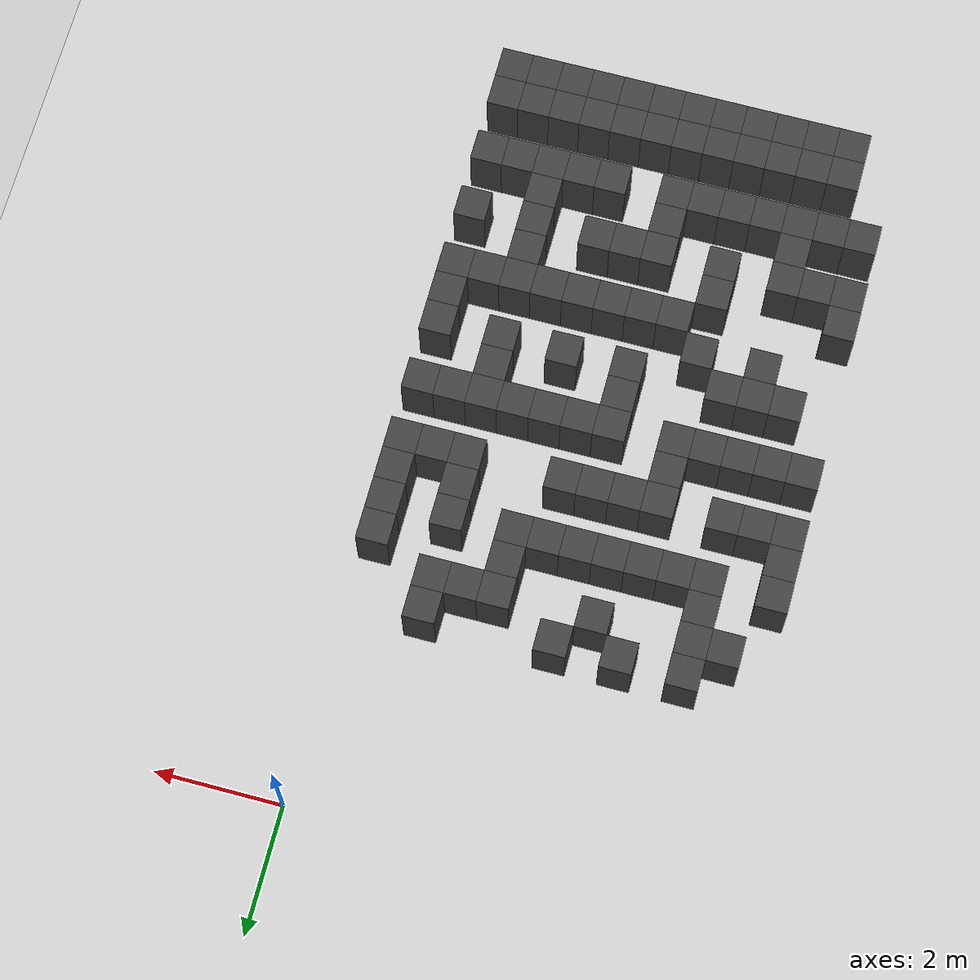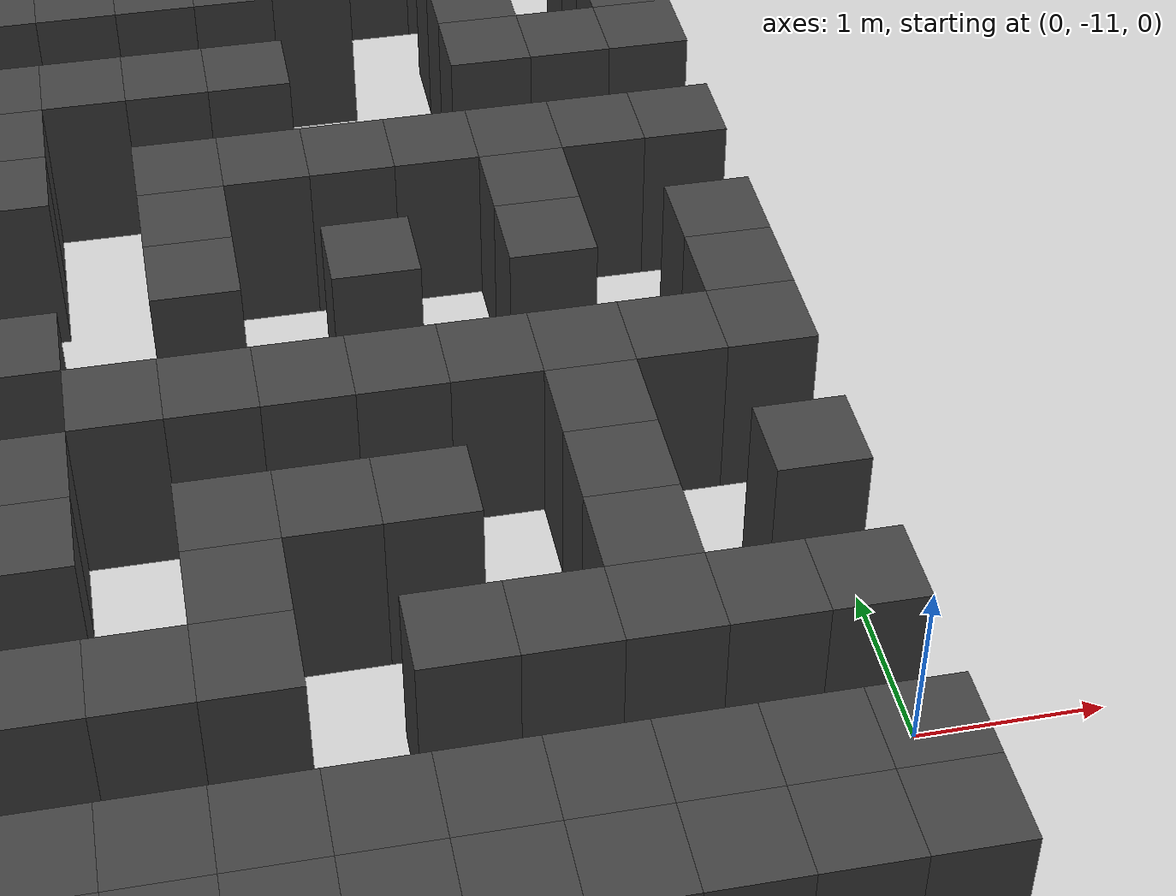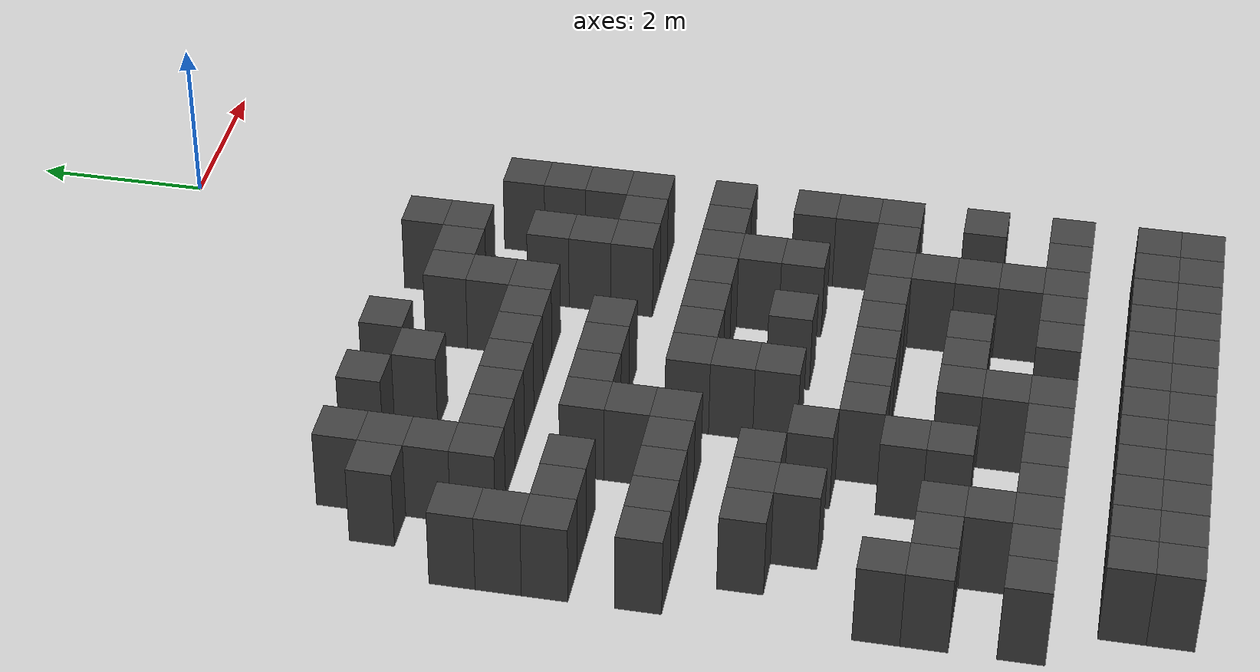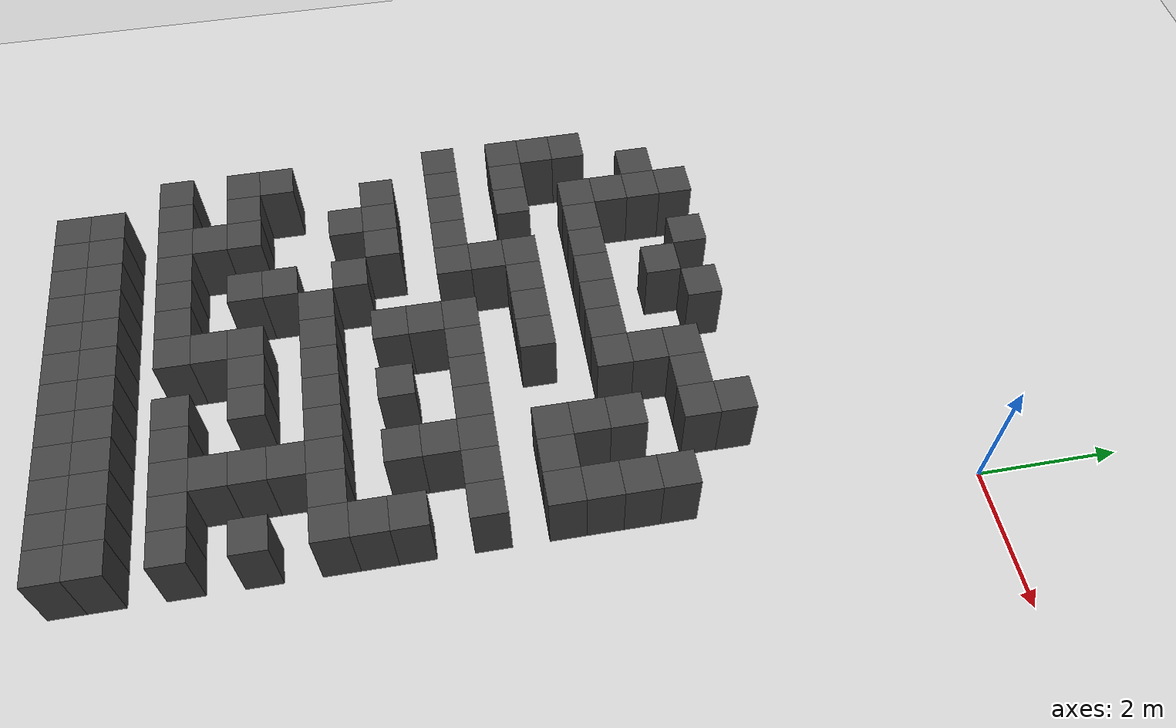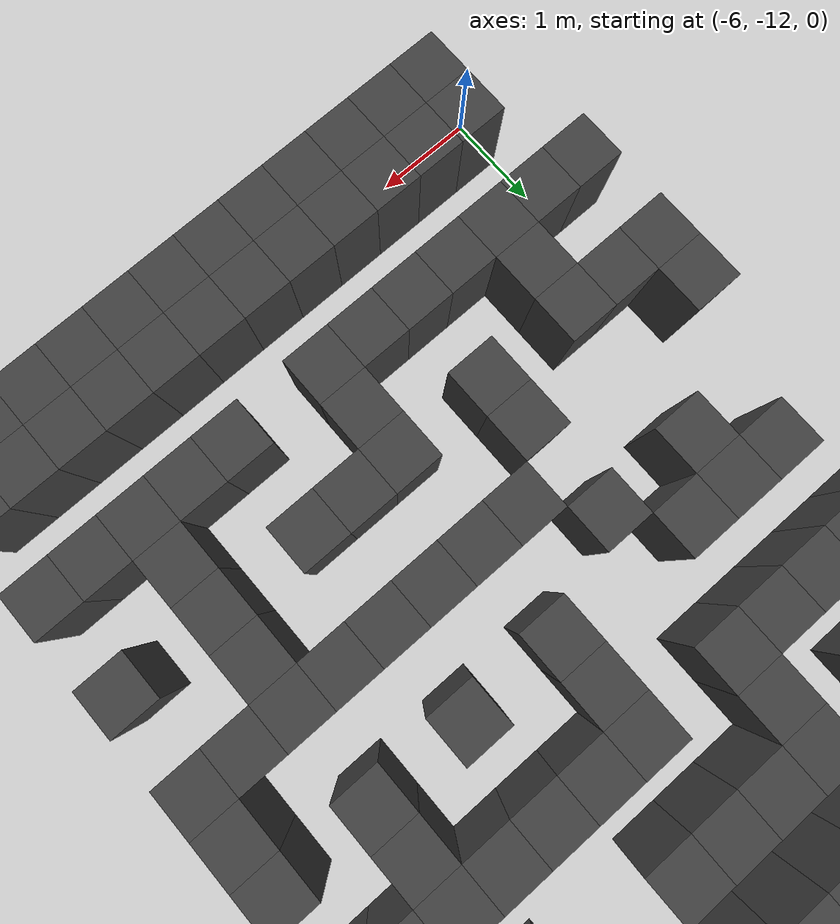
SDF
<sdf version="1.7">
 <world name="map_15168">
  <model name="ground_plane">
   <static>true</static>
   <link name="link">
    <collision name="collision">
     <geometry><plane><normal>0 0 1</normal><size>200 200</size></plane></geometry>
    </collision>
    <visual name="visual">
     <geometry><plane><normal>0 0 1</normal><size>200 200</size></plane></geometry>
     <material><ambient>0.8 0.8 0.8 1</ambient><diffuse>0.8 0.8 0.8 1</diffuse></material>
    </visual>
   </link>
  </model>
  <model name="maze_environment">
   <static>true</static>
   <link name="wall_735">
    <pose>-5.250 -3.250 0.500 0 0 0</pose>
    <collision name="col"><geometry><box><size>0.5 0.5 1.0</size></box></geometry></collision>
    <visual name="vis">
     <geometry><box><size>0.5 0.5 1.0</size></box></geometry>
     <material><ambient>0.15 0.15 0.15 1</ambient><diffuse>0.25 0.25 0.25 1</diffuse></material>
    </visual>
   </link>
   <link name="wall_736">
    <pose>-4.250 -3.250 0.500 0 0 0</pose>
    <collision name="col"><geometry><box><size>0.5 0.5 1.0</size></box></geometry></collision>
    <visual name="vis">
     <geometry><box><size>0.5 0.5 1.0</size></box></geometry>
     <material><ambient>0.15 0.15 0.15 1</ambient><diffuse>0.25 0.25 0.25 1</diffuse></material>
    </visual>
   </link>
   <link name="wall_737">
    <pose>-3.250 -3.250 0.500 0 0 0</pose>
    <collision name="col"><geometry><box><size>0.5 0.5 1.0</size></box></geometry></collision>
    <visual name="vis">
     <geometry><box><size>0.5 0.5 1.0</size></box></geometry>
     <material><ambient>0.15 0.15 0.15 1</ambient><diffuse>0.25 0.25 0.25 1</diffuse></material>
    </visual>
   </link>
   <link name="wall_738">
    <pose>-1.250 -3.250 0.500 0 0 0</pose>
    <collision name="col"><geometry><box><size>0.5 0.5 1.0</size></box></geometry></collision>
    <visual name="vis">
     <geometry><box><size>0.5 0.5 1.0</size></box></geometry>
     <material><ambient>0.15 0.15 0.15 1</ambient><diffuse>0.25 0.25 0.25 1</diffuse></material>
    </visual>
   </link>
   <link name="wall_754">
    <pose>-5.750 -3.750 0.500 0 0 0</pose>
    <collision name="col"><geometry><box><size>0.5 0.5 1.0</size></box></geometry></collision>
    <visual name="vis">
     <geometry><box><size>0.5 0.5 1.0</size></box></geometry>
     <material><ambient>0.15 0.15 0.15 1</ambient><diffuse>0.25 0.25 0.25 1</diffuse></material>
    </visual>
   </link>
   <link name="wall_755">
    <pose>-5.250 -3.750 0.500 0 0 0</pose>
    <collision name="col"><geometry><box><size>0.5 0.5 1.0</size></box></geometry></collision>
    <visual name="vis">
     <geometry><box><size>0.5 0.5 1.0</size></box></geometry>
     <material><ambient>0.15 0.15 0.15 1</ambient><diffuse>0.25 0.25 0.25 1</diffuse></material>
    </visual>
   </link>
   <link name="wall_756">
    <pose>-3.750 -3.750 0.500 0 0 0</pose>
    <collision name="col"><geometry><box><size>0.5 0.5 1.0</size></box></geometry></collision>
    <visual name="vis">
     <geometry><box><size>0.5 0.5 1.0</size></box></geometry>
     <material><ambient>0.15 0.15 0.15 1</ambient><diffuse>0.25 0.25 0.25 1</diffuse></material>
    </visual>
   </link>
   <link name="wall_757">
    <pose>-2.250 -3.750 0.500 0 0 0</pose>
    <collision name="col"><geometry><box><size>0.5 0.5 1.0</size></box></geometry></collision>
    <visual name="vis">
     <geometry><box><size>0.5 0.5 1.0</size></box></geometry>
     <material><ambient>0.15 0.15 0.15 1</ambient><diffuse>0.25 0.25 0.25 1</diffuse></material>
    </visual>
   </link>
   <link name="wall_758">
    <pose>-1.750 -3.750 0.500 0 0 0</pose>
    <collision name="col"><geometry><box><size>0.5 0.5 1.0</size></box></geometry></collision>
    <visual name="vis">
     <geometry><box><size>0.5 0.5 1.0</size></box></geometry>
     <material><ambient>0.15 0.15 0.15 1</ambient><diffuse>0.25 0.25 0.25 1</diffuse></material>
    </visual>
   </link>
   <link name="wall_759">
    <pose>-1.250 -3.750 0.500 0 0 0</pose>
    <collision name="col"><geometry><box><size>0.5 0.5 1.0</size></box></geometry></collision>
    <visual name="vis">
     <geometry><box><size>0.5 0.5 1.0</size></box></geometry>
     <material><ambient>0.15 0.15 0.15 1</ambient><diffuse>0.25 0.25 0.25 1</diffuse></material>
    </visual>
   </link>
   <link name="wall_776">
    <pose>-5.250 -4.250 0.500 0 0 0</pose>
    <collision name="col"><geometry><box><size>0.5 0.5 1.0</size></box></geometry></collision>
    <visual name="vis">
     <geometry><box><size>0.5 0.5 1.0</size></box></geometry>
     <material><ambient>0.15 0.15 0.15 1</ambient><diffuse>0.25 0.25 0.25 1</diffuse></material>
    </visual>
   </link>
   <link name="wall_777">
    <pose>-2.250 -4.250 0.500 0 0 0</pose>
    <collision name="col"><geometry><box><size>0.5 0.5 1.0</size></box></geometry></collision>
    <visual name="vis">
     <geometry><box><size>0.5 0.5 1.0</size></box></geometry>
     <material><ambient>0.15 0.15 0.15 1</ambient><diffuse>0.25 0.25 0.25 1</diffuse></material>
    </visual>
   </link>
   <link name="wall_778">
    <pose>-0.250 -4.250 0.500 0 0 0</pose>
    <collision name="col"><geometry><box><size>0.5 0.5 1.0</size></box></geometry></collision>
    <visual name="vis">
     <geometry><box><size>0.5 0.5 1.0</size></box></geometry>
     <material><ambient>0.15 0.15 0.15 1</ambient><diffuse>0.25 0.25 0.25 1</diffuse></material>
    </visual>
   </link>
   <link name="wall_792">
    <pose>-6.250 -4.750 0.500 0 0 0</pose>
    <collision name="col"><geometry><box><size>0.5 0.5 1.0</size></box></geometry></collision>
    <visual name="vis">
     <geometry><box><size>0.5 0.5 1.0</size></box></geometry>
     <material><ambient>0.15 0.15 0.15 1</ambient><diffuse>0.25 0.25 0.25 1</diffuse></material>
    </visual>
   </link>
   <link name="wall_793">
    <pose>-5.250 -4.750 0.500 0 0 0</pose>
    <collision name="col"><geometry><box><size>0.5 0.5 1.0</size></box></geometry></collision>
    <visual name="vis">
     <geometry><box><size>0.5 0.5 1.0</size></box></geometry>
     <material><ambient>0.15 0.15 0.15 1</ambient><diffuse>0.25 0.25 0.25 1</diffuse></material>
    </visual>
   </link>
   <link name="wall_794">
    <pose>-4.750 -4.750 0.500 0 0 0</pose>
    <collision name="col"><geometry><box><size>0.5 0.5 1.0</size></box></geometry></collision>
    <visual name="vis">
     <geometry><box><size>0.5 0.5 1.0</size></box></geometry>
     <material><ambient>0.15 0.15 0.15 1</ambient><diffuse>0.25 0.25 0.25 1</diffuse></material>
    </visual>
   </link>
   <link name="wall_795">
    <pose>-4.250 -4.750 0.500 0 0 0</pose>
    <collision name="col"><geometry><box><size>0.5 0.5 1.0</size></box></geometry></collision>
    <visual name="vis">
     <geometry><box><size>0.5 0.5 1.0</size></box></geometry>
     <material><ambient>0.15 0.15 0.15 1</ambient><diffuse>0.25 0.25 0.25 1</diffuse></material>
    </visual>
   </link>
   <link name="wall_796">
    <pose>-3.750 -4.750 0.500 0 0 0</pose>
    <collision name="col"><geometry><box><size>0.5 0.5 1.0</size></box></geometry></collision>
    <visual name="vis">
     <geometry><box><size>0.5 0.5 1.0</size></box></geometry>
     <material><ambient>0.15 0.15 0.15 1</ambient><diffuse>0.25 0.25 0.25 1</diffuse></material>
    </visual>
   </link>
   <link name="wall_797">
    <pose>-3.250 -4.750 0.500 0 0 0</pose>
    <collision name="col"><geometry><box><size>0.5 0.5 1.0</size></box></geometry></collision>
    <visual name="vis">
     <geometry><box><size>0.5 0.5 1.0</size></box></geometry>
     <material><ambient>0.15 0.15 0.15 1</ambient><diffuse>0.25 0.25 0.25 1</diffuse></material>
    </visual>
   </link>
   <link name="wall_798">
    <pose>-2.750 -4.750 0.500 0 0 0</pose>
    <collision name="col"><geometry><box><size>0.5 0.5 1.0</size></box></geometry></collision>
    <visual name="vis">
     <geometry><box><size>0.5 0.5 1.0</size></box></geometry>
     <material><ambient>0.15 0.15 0.15 1</ambient><diffuse>0.25 0.25 0.25 1</diffuse></material>
    </visual>
   </link>
   <link name="wall_799">
    <pose>-2.250 -4.750 0.500 0 0 0</pose>
    <collision name="col"><geometry><box><size>0.5 0.5 1.0</size></box></geometry></collision>
    <visual name="vis">
     <geometry><box><size>0.5 0.5 1.0</size></box></geometry>
     <material><ambient>0.15 0.15 0.15 1</ambient><diffuse>0.25 0.25 0.25 1</diffuse></material>
    </visual>
   </link>
   <link name="wall_800">
    <pose>-1.250 -4.750 0.500 0 0 0</pose>
    <collision name="col"><geometry><box><size>0.5 0.5 1.0</size></box></geometry></collision>
    <visual name="vis">
     <geometry><box><size>0.5 0.5 1.0</size></box></geometry>
     <material><ambient>0.15 0.15 0.15 1</ambient><diffuse>0.25 0.25 0.25 1</diffuse></material>
    </visual>
   </link>
   <link name="wall_801">
    <pose>-0.250 -4.750 0.500 0 0 0</pose>
    <collision name="col"><geometry><box><size>0.5 0.5 1.0</size></box></geometry></collision>
    <visual name="vis">
     <geometry><box><size>0.5 0.5 1.0</size></box></geometry>
     <material><ambient>0.15 0.15 0.15 1</ambient><diffuse>0.25 0.25 0.25 1</diffuse></material>
    </visual>
   </link>
   <link name="wall_820">
    <pose>-6.250 -5.250 0.500 0 0 0</pose>
    <collision name="col"><geometry><box><size>0.5 0.5 1.0</size></box></geometry></collision>
    <visual name="vis">
     <geometry><box><size>0.5 0.5 1.0</size></box></geometry>
     <material><ambient>0.15 0.15 0.15 1</ambient><diffuse>0.25 0.25 0.25 1</diffuse></material>
    </visual>
   </link>
   <link name="wall_821">
    <pose>-1.250 -5.250 0.500 0 0 0</pose>
    <collision name="col"><geometry><box><size>0.5 0.5 1.0</size></box></geometry></collision>
    <visual name="vis">
     <geometry><box><size>0.5 0.5 1.0</size></box></geometry>
     <material><ambient>0.15 0.15 0.15 1</ambient><diffuse>0.25 0.25 0.25 1</diffuse></material>
    </visual>
   </link>
   <link name="wall_822">
    <pose>-0.250 -5.250 0.500 0 0 0</pose>
    <collision name="col"><geometry><box><size>0.5 0.5 1.0</size></box></geometry></collision>
    <visual name="vis">
     <geometry><box><size>0.5 0.5 1.0</size></box></geometry>
     <material><ambient>0.15 0.15 0.15 1</ambient><diffuse>0.25 0.25 0.25 1</diffuse></material>
    </visual>
   </link>
   <link name="wall_837">
    <pose>-6.250 -5.750 0.500 0 0 0</pose>
    <collision name="col"><geometry><box><size>0.5 0.5 1.0</size></box></geometry></collision>
    <visual name="vis">
     <geometry><box><size>0.5 0.5 1.0</size></box></geometry>
     <material><ambient>0.15 0.15 0.15 1</ambient><diffuse>0.25 0.25 0.25 1</diffuse></material>
    </visual>
   </link>
   <link name="wall_838">
    <pose>-5.750 -5.750 0.500 0 0 0</pose>
    <collision name="col"><geometry><box><size>0.5 0.5 1.0</size></box></geometry></collision>
    <visual name="vis">
     <geometry><box><size>0.5 0.5 1.0</size></box></geometry>
     <material><ambient>0.15 0.15 0.15 1</ambient><diffuse>0.25 0.25 0.25 1</diffuse></material>
    </visual>
   </link>
   <link name="wall_839">
    <pose>-5.250 -5.750 0.500 0 0 0</pose>
    <collision name="col"><geometry><box><size>0.5 0.5 1.0</size></box></geometry></collision>
    <visual name="vis">
     <geometry><box><size>0.5 0.5 1.0</size></box></geometry>
     <material><ambient>0.15 0.15 0.15 1</ambient><diffuse>0.25 0.25 0.25 1</diffuse></material>
    </visual>
   </link>
   <link name="wall_840">
    <pose>-4.250 -5.750 0.500 0 0 0</pose>
    <collision name="col"><geometry><box><size>0.5 0.5 1.0</size></box></geometry></collision>
    <visual name="vis">
     <geometry><box><size>0.5 0.5 1.0</size></box></geometry>
     <material><ambient>0.15 0.15 0.15 1</ambient><diffuse>0.25 0.25 0.25 1</diffuse></material>
    </visual>
   </link>
   <link name="wall_841">
    <pose>-3.750 -5.750 0.500 0 0 0</pose>
    <collision name="col"><geometry><box><size>0.5 0.5 1.0</size></box></geometry></collision>
    <visual name="vis">
     <geometry><box><size>0.5 0.5 1.0</size></box></geometry>
     <material><ambient>0.15 0.15 0.15 1</ambient><diffuse>0.25 0.25 0.25 1</diffuse></material>
    </visual>
   </link>
   <link name="wall_842">
    <pose>-3.250 -5.750 0.500 0 0 0</pose>
    <collision name="col"><geometry><box><size>0.5 0.5 1.0</size></box></geometry></collision>
    <visual name="vis">
     <geometry><box><size>0.5 0.5 1.0</size></box></geometry>
     <material><ambient>0.15 0.15 0.15 1</ambient><diffuse>0.25 0.25 0.25 1</diffuse></material>
    </visual>
   </link>
   <link name="wall_843">
    <pose>-2.750 -5.750 0.500 0 0 0</pose>
    <collision name="col"><geometry><box><size>0.5 0.5 1.0</size></box></geometry></collision>
    <visual name="vis">
     <geometry><box><size>0.5 0.5 1.0</size></box></geometry>
     <material><ambient>0.15 0.15 0.15 1</ambient><diffuse>0.25 0.25 0.25 1</diffuse></material>
    </visual>
   </link>
   <link name="wall_844">
    <pose>-1.250 -5.750 0.500 0 0 0</pose>
    <collision name="col"><geometry><box><size>0.5 0.5 1.0</size></box></geometry></collision>
    <visual name="vis">
     <geometry><box><size>0.5 0.5 1.0</size></box></geometry>
     <material><ambient>0.15 0.15 0.15 1</ambient><diffuse>0.25 0.25 0.25 1</diffuse></material>
    </visual>
   </link>
   <link name="wall_845">
    <pose>-0.750 -5.750 0.500 0 0 0</pose>
    <collision name="col"><geometry><box><size>0.5 0.5 1.0</size></box></geometry></collision>
    <visual name="vis">
     <geometry><box><size>0.5 0.5 1.0</size></box></geometry>
     <material><ambient>0.15 0.15 0.15 1</ambient><diffuse>0.25 0.25 0.25 1</diffuse></material>
    </visual>
   </link>
   <link name="wall_846">
    <pose>-0.250 -5.750 0.500 0 0 0</pose>
    <collision name="col"><geometry><box><size>0.5 0.5 1.0</size></box></geometry></collision>
    <visual name="vis">
     <geometry><box><size>0.5 0.5 1.0</size></box></geometry>
     <material><ambient>0.15 0.15 0.15 1</ambient><diffuse>0.25 0.25 0.25 1</diffuse></material>
    </visual>
   </link>
   <link name="wall_867">
    <pose>-4.250 -6.250 0.500 0 0 0</pose>
    <collision name="col"><geometry><box><size>0.5 0.5 1.0</size></box></geometry></collision>
    <visual name="vis">
     <geometry><box><size>0.5 0.5 1.0</size></box></geometry>
     <material><ambient>0.15 0.15 0.15 1</ambient><diffuse>0.25 0.25 0.25 1</diffuse></material>
    </visual>
   </link>
   <link name="wall_882">
    <pose>-6.250 -6.750 0.500 0 0 0</pose>
    <collision name="col"><geometry><box><size>0.5 0.5 1.0</size></box></geometry></collision>
    <visual name="vis">
     <geometry><box><size>0.5 0.5 1.0</size></box></geometry>
     <material><ambient>0.15 0.15 0.15 1</ambient><diffuse>0.25 0.25 0.25 1</diffuse></material>
    </visual>
   </link>
   <link name="wall_883">
    <pose>-5.750 -6.750 0.500 0 0 0</pose>
    <collision name="col"><geometry><box><size>0.5 0.5 1.0</size></box></geometry></collision>
    <visual name="vis">
     <geometry><box><size>0.5 0.5 1.0</size></box></geometry>
     <material><ambient>0.15 0.15 0.15 1</ambient><diffuse>0.25 0.25 0.25 1</diffuse></material>
    </visual>
   </link>
   <link name="wall_884">
    <pose>-5.250 -6.750 0.500 0 0 0</pose>
    <collision name="col"><geometry><box><size>0.5 0.5 1.0</size></box></geometry></collision>
    <visual name="vis">
     <geometry><box><size>0.5 0.5 1.0</size></box></geometry>
     <material><ambient>0.15 0.15 0.15 1</ambient><diffuse>0.25 0.25 0.25 1</diffuse></material>
    </visual>
   </link>
   <link name="wall_885">
    <pose>-4.750 -6.750 0.500 0 0 0</pose>
    <collision name="col"><geometry><box><size>0.5 0.5 1.0</size></box></geometry></collision>
    <visual name="vis">
     <geometry><box><size>0.5 0.5 1.0</size></box></geometry>
     <material><ambient>0.15 0.15 0.15 1</ambient><diffuse>0.25 0.25 0.25 1</diffuse></material>
    </visual>
   </link>
   <link name="wall_886">
    <pose>-4.250 -6.750 0.500 0 0 0</pose>
    <collision name="col"><geometry><box><size>0.5 0.5 1.0</size></box></geometry></collision>
    <visual name="vis">
     <geometry><box><size>0.5 0.5 1.0</size></box></geometry>
     <material><ambient>0.15 0.15 0.15 1</ambient><diffuse>0.25 0.25 0.25 1</diffuse></material>
    </visual>
   </link>
   <link name="wall_887">
    <pose>-3.250 -6.750 0.500 0 0 0</pose>
    <collision name="col"><geometry><box><size>0.5 0.5 1.0</size></box></geometry></collision>
    <visual name="vis">
     <geometry><box><size>0.5 0.5 1.0</size></box></geometry>
     <material><ambient>0.15 0.15 0.15 1</ambient><diffuse>0.25 0.25 0.25 1</diffuse></material>
    </visual>
   </link>
   <link name="wall_888">
    <pose>-2.750 -6.750 0.500 0 0 0</pose>
    <collision name="col"><geometry><box><size>0.5 0.5 1.0</size></box></geometry></collision>
    <visual name="vis">
     <geometry><box><size>0.5 0.5 1.0</size></box></geometry>
     <material><ambient>0.15 0.15 0.15 1</ambient><diffuse>0.25 0.25 0.25 1</diffuse></material>
    </visual>
   </link>
   <link name="wall_889">
    <pose>-2.250 -6.750 0.500 0 0 0</pose>
    <collision name="col"><geometry><box><size>0.5 0.5 1.0</size></box></geometry></collision>
    <visual name="vis">
     <geometry><box><size>0.5 0.5 1.0</size></box></geometry>
     <material><ambient>0.15 0.15 0.15 1</ambient><diffuse>0.25 0.25 0.25 1</diffuse></material>
    </visual>
   </link>
   <link name="wall_890">
    <pose>-1.750 -6.750 0.500 0 0 0</pose>
    <collision name="col"><geometry><box><size>0.5 0.5 1.0</size></box></geometry></collision>
    <visual name="vis">
     <geometry><box><size>0.5 0.5 1.0</size></box></geometry>
     <material><ambient>0.15 0.15 0.15 1</ambient><diffuse>0.25 0.25 0.25 1</diffuse></material>
    </visual>
   </link>
   <link name="wall_891">
    <pose>-1.250 -6.750 0.500 0 0 0</pose>
    <collision name="col"><geometry><box><size>0.5 0.5 1.0</size></box></geometry></collision>
    <visual name="vis">
     <geometry><box><size>0.5 0.5 1.0</size></box></geometry>
     <material><ambient>0.15 0.15 0.15 1</ambient><diffuse>0.25 0.25 0.25 1</diffuse></material>
    </visual>
   </link>
   <link name="wall_892">
    <pose>-0.750 -6.750 0.500 0 0 0</pose>
    <collision name="col"><geometry><box><size>0.5 0.5 1.0</size></box></geometry></collision>
    <visual name="vis">
     <geometry><box><size>0.5 0.5 1.0</size></box></geometry>
     <material><ambient>0.15 0.15 0.15 1</ambient><diffuse>0.25 0.25 0.25 1</diffuse></material>
    </visual>
   </link>
   <link name="wall_893">
    <pose>-0.250 -6.750 0.500 0 0 0</pose>
    <collision name="col"><geometry><box><size>0.5 0.5 1.0</size></box></geometry></collision>
    <visual name="vis">
     <geometry><box><size>0.5 0.5 1.0</size></box></geometry>
     <material><ambient>0.15 0.15 0.15 1</ambient><diffuse>0.25 0.25 0.25 1</diffuse></material>
    </visual>
   </link>
   <link name="wall_915">
    <pose>-3.250 -7.250 0.500 0 0 0</pose>
    <collision name="col"><geometry><box><size>0.5 0.5 1.0</size></box></geometry></collision>
    <visual name="vis">
     <geometry><box><size>0.5 0.5 1.0</size></box></geometry>
     <material><ambient>0.15 0.15 0.15 1</ambient><diffuse>0.25 0.25 0.25 1</diffuse></material>
    </visual>
   </link>
   <link name="wall_916">
    <pose>-1.250 -7.250 0.500 0 0 0</pose>
    <collision name="col"><geometry><box><size>0.5 0.5 1.0</size></box></geometry></collision>
    <visual name="vis">
     <geometry><box><size>0.5 0.5 1.0</size></box></geometry>
     <material><ambient>0.15 0.15 0.15 1</ambient><diffuse>0.25 0.25 0.25 1</diffuse></material>
    </visual>
   </link>
   <link name="wall_931">
    <pose>-5.750 -7.750 0.500 0 0 0</pose>
    <collision name="col"><geometry><box><size>0.5 0.5 1.0</size></box></geometry></collision>
    <visual name="vis">
     <geometry><box><size>0.5 0.5 1.0</size></box></geometry>
     <material><ambient>0.15 0.15 0.15 1</ambient><diffuse>0.25 0.25 0.25 1</diffuse></material>
    </visual>
   </link>
   <link name="wall_932">
    <pose>-5.250 -7.750 0.500 0 0 0</pose>
    <collision name="col"><geometry><box><size>0.5 0.5 1.0</size></box></geometry></collision>
    <visual name="vis">
     <geometry><box><size>0.5 0.5 1.0</size></box></geometry>
     <material><ambient>0.15 0.15 0.15 1</ambient><diffuse>0.25 0.25 0.25 1</diffuse></material>
    </visual>
   </link>
   <link name="wall_933">
    <pose>-4.750 -7.750 0.500 0 0 0</pose>
    <collision name="col"><geometry><box><size>0.5 0.5 1.0</size></box></geometry></collision>
    <visual name="vis">
     <geometry><box><size>0.5 0.5 1.0</size></box></geometry>
     <material><ambient>0.15 0.15 0.15 1</ambient><diffuse>0.25 0.25 0.25 1</diffuse></material>
    </visual>
   </link>
   <link name="wall_934">
    <pose>-3.250 -7.750 0.500 0 0 0</pose>
    <collision name="col"><geometry><box><size>0.5 0.5 1.0</size></box></geometry></collision>
    <visual name="vis">
     <geometry><box><size>0.5 0.5 1.0</size></box></geometry>
     <material><ambient>0.15 0.15 0.15 1</ambient><diffuse>0.25 0.25 0.25 1</diffuse></material>
    </visual>
   </link>
   <link name="wall_935">
    <pose>-2.250 -7.750 0.500 0 0 0</pose>
    <collision name="col"><geometry><box><size>0.5 0.5 1.0</size></box></geometry></collision>
    <visual name="vis">
     <geometry><box><size>0.5 0.5 1.0</size></box></geometry>
     <material><ambient>0.15 0.15 0.15 1</ambient><diffuse>0.25 0.25 0.25 1</diffuse></material>
    </visual>
   </link>
   <link name="wall_936">
    <pose>-1.250 -7.750 0.500 0 0 0</pose>
    <collision name="col"><geometry><box><size>0.5 0.5 1.0</size></box></geometry></collision>
    <visual name="vis">
     <geometry><box><size>0.5 0.5 1.0</size></box></geometry>
     <material><ambient>0.15 0.15 0.15 1</ambient><diffuse>0.25 0.25 0.25 1</diffuse></material>
    </visual>
   </link>
   <link name="wall_937">
    <pose>-0.250 -7.750 0.500 0 0 0</pose>
    <collision name="col"><geometry><box><size>0.5 0.5 1.0</size></box></geometry></collision>
    <visual name="vis">
     <geometry><box><size>0.5 0.5 1.0</size></box></geometry>
     <material><ambient>0.15 0.15 0.15 1</ambient><diffuse>0.25 0.25 0.25 1</diffuse></material>
    </visual>
   </link>
   <link name="wall_958">
    <pose>-5.250 -8.250 0.500 0 0 0</pose>
    <collision name="col"><geometry><box><size>0.5 0.5 1.0</size></box></geometry></collision>
    <visual name="vis">
     <geometry><box><size>0.5 0.5 1.0</size></box></geometry>
     <material><ambient>0.15 0.15 0.15 1</ambient><diffuse>0.25 0.25 0.25 1</diffuse></material>
    </visual>
   </link>
   <link name="wall_959">
    <pose>-4.250 -8.250 0.500 0 0 0</pose>
    <collision name="col"><geometry><box><size>0.5 0.5 1.0</size></box></geometry></collision>
    <visual name="vis">
     <geometry><box><size>0.5 0.5 1.0</size></box></geometry>
     <material><ambient>0.15 0.15 0.15 1</ambient><diffuse>0.25 0.25 0.25 1</diffuse></material>
    </visual>
   </link>
   <link name="wall_960">
    <pose>-0.250 -8.250 0.500 0 0 0</pose>
    <collision name="col"><geometry><box><size>0.5 0.5 1.0</size></box></geometry></collision>
    <visual name="vis">
     <geometry><box><size>0.5 0.5 1.0</size></box></geometry>
     <material><ambient>0.15 0.15 0.15 1</ambient><diffuse>0.25 0.25 0.25 1</diffuse></material>
    </visual>
   </link>
   <link name="wall_978">
    <pose>-3.750 -8.750 0.500 0 0 0</pose>
    <collision name="col"><geometry><box><size>0.5 0.5 1.0</size></box></geometry></collision>
    <visual name="vis">
     <geometry><box><size>0.5 0.5 1.0</size></box></geometry>
     <material><ambient>0.15 0.15 0.15 1</ambient><diffuse>0.25 0.25 0.25 1</diffuse></material>
    </visual>
   </link>
   <link name="wall_979">
    <pose>-3.250 -8.750 0.500 0 0 0</pose>
    <collision name="col"><geometry><box><size>0.5 0.5 1.0</size></box></geometry></collision>
    <visual name="vis">
     <geometry><box><size>0.5 0.5 1.0</size></box></geometry>
     <material><ambient>0.15 0.15 0.15 1</ambient><diffuse>0.25 0.25 0.25 1</diffuse></material>
    </visual>
   </link>
   <link name="wall_980">
    <pose>-2.750 -8.750 0.500 0 0 0</pose>
    <collision name="col"><geometry><box><size>0.5 0.5 1.0</size></box></geometry></collision>
    <visual name="vis">
     <geometry><box><size>0.5 0.5 1.0</size></box></geometry>
     <material><ambient>0.15 0.15 0.15 1</ambient><diffuse>0.25 0.25 0.25 1</diffuse></material>
    </visual>
   </link>
   <link name="wall_981">
    <pose>-2.250 -8.750 0.500 0 0 0</pose>
    <collision name="col"><geometry><box><size>0.5 0.5 1.0</size></box></geometry></collision>
    <visual name="vis">
     <geometry><box><size>0.5 0.5 1.0</size></box></geometry>
     <material><ambient>0.15 0.15 0.15 1</ambient><diffuse>0.25 0.25 0.25 1</diffuse></material>
    </visual>
   </link>
   <link name="wall_982">
    <pose>-1.750 -8.750 0.500 0 0 0</pose>
    <collision name="col"><geometry><box><size>0.5 0.5 1.0</size></box></geometry></collision>
    <visual name="vis">
     <geometry><box><size>0.5 0.5 1.0</size></box></geometry>
     <material><ambient>0.15 0.15 0.15 1</ambient><diffuse>0.25 0.25 0.25 1</diffuse></material>
    </visual>
   </link>
   <link name="wall_983">
    <pose>-1.250 -8.750 0.500 0 0 0</pose>
    <collision name="col"><geometry><box><size>0.5 0.5 1.0</size></box></geometry></collision>
    <visual name="vis">
     <geometry><box><size>0.5 0.5 1.0</size></box></geometry>
     <material><ambient>0.15 0.15 0.15 1</ambient><diffuse>0.25 0.25 0.25 1</diffuse></material>
    </visual>
   </link>
   <link name="wall_984">
    <pose>-0.750 -8.750 0.500 0 0 0</pose>
    <collision name="col"><geometry><box><size>0.5 0.5 1.0</size></box></geometry></collision>
    <visual name="vis">
     <geometry><box><size>0.5 0.5 1.0</size></box></geometry>
     <material><ambient>0.15 0.15 0.15 1</ambient><diffuse>0.25 0.25 0.25 1</diffuse></material>
    </visual>
   </link>
   <link name="wall_985">
    <pose>-0.250 -8.750 0.500 0 0 0</pose>
    <collision name="col"><geometry><box><size>0.5 0.5 1.0</size></box></geometry></collision>
    <visual name="vis">
     <geometry><box><size>0.5 0.5 1.0</size></box></geometry>
     <material><ambient>0.15 0.15 0.15 1</ambient><diffuse>0.25 0.25 0.25 1</diffuse></material>
    </visual>
   </link>
   <link name="wall_1006">
    <pose>-6.250 -9.250 0.500 0 0 0</pose>
    <collision name="col"><geometry><box><size>0.5 0.5 1.0</size></box></geometry></collision>
    <visual name="vis">
     <geometry><box><size>0.5 0.5 1.0</size></box></geometry>
     <material><ambient>0.15 0.15 0.15 1</ambient><diffuse>0.25 0.25 0.25 1</diffuse></material>
    </visual>
   </link>
   <link name="wall_1007">
    <pose>-4.250 -9.250 0.500 0 0 0</pose>
    <collision name="col"><geometry><box><size>0.5 0.5 1.0</size></box></geometry></collision>
    <visual name="vis">
     <geometry><box><size>0.5 0.5 1.0</size></box></geometry>
     <material><ambient>0.15 0.15 0.15 1</ambient><diffuse>0.25 0.25 0.25 1</diffuse></material>
    </visual>
   </link>
   <link name="wall_1008">
    <pose>-1.250 -9.250 0.500 0 0 0</pose>
    <collision name="col"><geometry><box><size>0.5 0.5 1.0</size></box></geometry></collision>
    <visual name="vis">
     <geometry><box><size>0.5 0.5 1.0</size></box></geometry>
     <material><ambient>0.15 0.15 0.15 1</ambient><diffuse>0.25 0.25 0.25 1</diffuse></material>
    </visual>
   </link>
   <link name="wall_1022">
    <pose>-6.250 -9.750 0.500 0 0 0</pose>
    <collision name="col"><geometry><box><size>0.5 0.5 1.0</size></box></geometry></collision>
    <visual name="vis">
     <geometry><box><size>0.5 0.5 1.0</size></box></geometry>
     <material><ambient>0.15 0.15 0.15 1</ambient><diffuse>0.25 0.25 0.25 1</diffuse></material>
    </visual>
   </link>
   <link name="wall_1023">
    <pose>-5.750 -9.750 0.500 0 0 0</pose>
    <collision name="col"><geometry><box><size>0.5 0.5 1.0</size></box></geometry></collision>
    <visual name="vis">
     <geometry><box><size>0.5 0.5 1.0</size></box></geometry>
     <material><ambient>0.15 0.15 0.15 1</ambient><diffuse>0.25 0.25 0.25 1</diffuse></material>
    </visual>
   </link>
   <link name="wall_1024">
    <pose>-5.250 -9.750 0.500 0 0 0</pose>
    <collision name="col"><geometry><box><size>0.5 0.5 1.0</size></box></geometry></collision>
    <visual name="vis">
     <geometry><box><size>0.5 0.5 1.0</size></box></geometry>
     <material><ambient>0.15 0.15 0.15 1</ambient><diffuse>0.25 0.25 0.25 1</diffuse></material>
    </visual>
   </link>
   <link name="wall_1025">
    <pose>-4.250 -9.750 0.500 0 0 0</pose>
    <collision name="col"><geometry><box><size>0.5 0.5 1.0</size></box></geometry></collision>
    <visual name="vis">
     <geometry><box><size>0.5 0.5 1.0</size></box></geometry>
     <material><ambient>0.15 0.15 0.15 1</ambient><diffuse>0.25 0.25 0.25 1</diffuse></material>
    </visual>
   </link>
   <link name="wall_1026">
    <pose>-3.250 -9.750 0.500 0 0 0</pose>
    <collision name="col"><geometry><box><size>0.5 0.5 1.0</size></box></geometry></collision>
    <visual name="vis">
     <geometry><box><size>0.5 0.5 1.0</size></box></geometry>
     <material><ambient>0.15 0.15 0.15 1</ambient><diffuse>0.25 0.25 0.25 1</diffuse></material>
    </visual>
   </link>
   <link name="wall_1027">
    <pose>-2.750 -9.750 0.500 0 0 0</pose>
    <collision name="col"><geometry><box><size>0.5 0.5 1.0</size></box></geometry></collision>
    <visual name="vis">
     <geometry><box><size>0.5 0.5 1.0</size></box></geometry>
     <material><ambient>0.15 0.15 0.15 1</ambient><diffuse>0.25 0.25 0.25 1</diffuse></material>
    </visual>
   </link>
   <link name="wall_1028">
    <pose>-2.250 -9.750 0.500 0 0 0</pose>
    <collision name="col"><geometry><box><size>0.5 0.5 1.0</size></box></geometry></collision>
    <visual name="vis">
     <geometry><box><size>0.5 0.5 1.0</size></box></geometry>
     <material><ambient>0.15 0.15 0.15 1</ambient><diffuse>0.25 0.25 0.25 1</diffuse></material>
    </visual>
   </link>
   <link name="wall_1029">
    <pose>-1.250 -9.750 0.500 0 0 0</pose>
    <collision name="col"><geometry><box><size>0.5 0.5 1.0</size></box></geometry></collision>
    <visual name="vis">
     <geometry><box><size>0.5 0.5 1.0</size></box></geometry>
     <material><ambient>0.15 0.15 0.15 1</ambient><diffuse>0.25 0.25 0.25 1</diffuse></material>
    </visual>
   </link>
   <link name="wall_1030">
    <pose>-0.250 -9.750 0.500 0 0 0</pose>
    <collision name="col"><geometry><box><size>0.5 0.5 1.0</size></box></geometry></collision>
    <visual name="vis">
     <geometry><box><size>0.5 0.5 1.0</size></box></geometry>
     <material><ambient>0.15 0.15 0.15 1</ambient><diffuse>0.25 0.25 0.25 1</diffuse></material>
    </visual>
   </link>
   <link name="wall_1051">
    <pose>-5.250 -10.250 0.500 0 0 0</pose>
    <collision name="col"><geometry><box><size>0.5 0.5 1.0</size></box></geometry></collision>
    <visual name="vis">
     <geometry><box><size>0.5 0.5 1.0</size></box></geometry>
     <material><ambient>0.15 0.15 0.15 1</ambient><diffuse>0.25 0.25 0.25 1</diffuse></material>
    </visual>
   </link>
   <link name="wall_1052">
    <pose>-3.250 -10.250 0.500 0 0 0</pose>
    <collision name="col"><geometry><box><size>0.5 0.5 1.0</size></box></geometry></collision>
    <visual name="vis">
     <geometry><box><size>0.5 0.5 1.0</size></box></geometry>
     <material><ambient>0.15 0.15 0.15 1</ambient><diffuse>0.25 0.25 0.25 1</diffuse></material>
    </visual>
   </link>
   <link name="wall_1053">
    <pose>-1.250 -10.250 0.500 0 0 0</pose>
    <collision name="col"><geometry><box><size>0.5 0.5 1.0</size></box></geometry></collision>
    <visual name="vis">
     <geometry><box><size>0.5 0.5 1.0</size></box></geometry>
     <material><ambient>0.15 0.15 0.15 1</ambient><diffuse>0.25 0.25 0.25 1</diffuse></material>
    </visual>
   </link>
   <link name="wall_1070">
    <pose>-6.250 -10.750 0.500 0 0 0</pose>
    <collision name="col"><geometry><box><size>0.5 0.5 1.0</size></box></geometry></collision>
    <visual name="vis">
     <geometry><box><size>0.5 0.5 1.0</size></box></geometry>
     <material><ambient>0.15 0.15 0.15 1</ambient><diffuse>0.25 0.25 0.25 1</diffuse></material>
    </visual>
   </link>
   <link name="wall_1071">
    <pose>-5.750 -10.750 0.500 0 0 0</pose>
    <collision name="col"><geometry><box><size>0.5 0.5 1.0</size></box></geometry></collision>
    <visual name="vis">
     <geometry><box><size>0.5 0.5 1.0</size></box></geometry>
     <material><ambient>0.15 0.15 0.15 1</ambient><diffuse>0.25 0.25 0.25 1</diffuse></material>
    </visual>
   </link>
   <link name="wall_1072">
    <pose>-5.250 -10.750 0.500 0 0 0</pose>
    <collision name="col"><geometry><box><size>0.5 0.5 1.0</size></box></geometry></collision>
    <visual name="vis">
     <geometry><box><size>0.5 0.5 1.0</size></box></geometry>
     <material><ambient>0.15 0.15 0.15 1</ambient><diffuse>0.25 0.25 0.25 1</diffuse></material>
    </visual>
   </link>
   <link name="wall_1073">
    <pose>-4.750 -10.750 0.500 0 0 0</pose>
    <collision name="col"><geometry><box><size>0.5 0.5 1.0</size></box></geometry></collision>
    <visual name="vis">
     <geometry><box><size>0.5 0.5 1.0</size></box></geometry>
     <material><ambient>0.15 0.15 0.15 1</ambient><diffuse>0.25 0.25 0.25 1</diffuse></material>
    </visual>
   </link>
   <link name="wall_1074">
    <pose>-4.250 -10.750 0.500 0 0 0</pose>
    <collision name="col"><geometry><box><size>0.5 0.5 1.0</size></box></geometry></collision>
    <visual name="vis">
     <geometry><box><size>0.5 0.5 1.0</size></box></geometry>
     <material><ambient>0.15 0.15 0.15 1</ambient><diffuse>0.25 0.25 0.25 1</diffuse></material>
    </visual>
   </link>
   <link name="wall_1075">
    <pose>-3.750 -10.750 0.500 0 0 0</pose>
    <collision name="col"><geometry><box><size>0.5 0.5 1.0</size></box></geometry></collision>
    <visual name="vis">
     <geometry><box><size>0.5 0.5 1.0</size></box></geometry>
     <material><ambient>0.15 0.15 0.15 1</ambient><diffuse>0.25 0.25 0.25 1</diffuse></material>
    </visual>
   </link>
   <link name="wall_1076">
    <pose>-3.250 -10.750 0.500 0 0 0</pose>
    <collision name="col"><geometry><box><size>0.5 0.5 1.0</size></box></geometry></collision>
    <visual name="vis">
     <geometry><box><size>0.5 0.5 1.0</size></box></geometry>
     <material><ambient>0.15 0.15 0.15 1</ambient><diffuse>0.25 0.25 0.25 1</diffuse></material>
    </visual>
   </link>
   <link name="wall_1077">
    <pose>-2.250 -10.750 0.500 0 0 0</pose>
    <collision name="col"><geometry><box><size>0.5 0.5 1.0</size></box></geometry></collision>
    <visual name="vis">
     <geometry><box><size>0.5 0.5 1.0</size></box></geometry>
     <material><ambient>0.15 0.15 0.15 1</ambient><diffuse>0.25 0.25 0.25 1</diffuse></material>
    </visual>
   </link>
   <link name="wall_1078">
    <pose>-1.750 -10.750 0.500 0 0 0</pose>
    <collision name="col"><geometry><box><size>0.5 0.5 1.0</size></box></geometry></collision>
    <visual name="vis">
     <geometry><box><size>0.5 0.5 1.0</size></box></geometry>
     <material><ambient>0.15 0.15 0.15 1</ambient><diffuse>0.25 0.25 0.25 1</diffuse></material>
    </visual>
   </link>
   <link name="wall_1079">
    <pose>-1.250 -10.750 0.500 0 0 0</pose>
    <collision name="col"><geometry><box><size>0.5 0.5 1.0</size></box></geometry></collision>
    <visual name="vis">
     <geometry><box><size>0.5 0.5 1.0</size></box></geometry>
     <material><ambient>0.15 0.15 0.15 1</ambient><diffuse>0.25 0.25 0.25 1</diffuse></material>
    </visual>
   </link>
   <link name="wall_1080">
    <pose>-0.750 -10.750 0.500 0 0 0</pose>
    <collision name="col"><geometry><box><size>0.5 0.5 1.0</size></box></geometry></collision>
    <visual name="vis">
     <geometry><box><size>0.5 0.5 1.0</size></box></geometry>
     <material><ambient>0.15 0.15 0.15 1</ambient><diffuse>0.25 0.25 0.25 1</diffuse></material>
    </visual>
   </link>
   <link name="wall_1081">
    <pose>-0.250 -10.750 0.500 0 0 0</pose>
    <collision name="col"><geometry><box><size>0.5 0.5 1.0</size></box></geometry></collision>
    <visual name="vis">
     <geometry><box><size>0.5 0.5 1.0</size></box></geometry>
     <material><ambient>0.15 0.15 0.15 1</ambient><diffuse>0.25 0.25 0.25 1</diffuse></material>
    </visual>
   </link>
   <link name="wall_1116">
    <pose>-5.750 -11.750 0.500 0 0 0</pose>
    <collision name="col"><geometry><box><size>0.5 0.5 1.0</size></box></geometry></collision>
    <visual name="vis">
     <geometry><box><size>0.5 0.5 1.0</size></box></geometry>
     <material><ambient>0.15 0.15 0.15 1</ambient><diffuse>0.25 0.25 0.25 1</diffuse></material>
    </visual>
   </link>
   <link name="wall_1117">
    <pose>-5.250 -11.750 0.500 0 0 0</pose>
    <collision name="col"><geometry><box><size>0.5 0.5 1.0</size></box></geometry></collision>
    <visual name="vis">
     <geometry><box><size>0.5 0.5 1.0</size></box></geometry>
     <material><ambient>0.15 0.15 0.15 1</ambient><diffuse>0.25 0.25 0.25 1</diffuse></material>
    </visual>
   </link>
   <link name="wall_1118">
    <pose>-4.750 -11.750 0.500 0 0 0</pose>
    <collision name="col"><geometry><box><size>0.5 0.5 1.0</size></box></geometry></collision>
    <visual name="vis">
     <geometry><box><size>0.5 0.5 1.0</size></box></geometry>
     <material><ambient>0.15 0.15 0.15 1</ambient><diffuse>0.25 0.25 0.25 1</diffuse></material>
    </visual>
   </link>
   <link name="wall_1119">
    <pose>-4.250 -11.750 0.500 0 0 0</pose>
    <collision name="col"><geometry><box><size>0.5 0.5 1.0</size></box></geometry></collision>
    <visual name="vis">
     <geometry><box><size>0.5 0.5 1.0</size></box></geometry>
     <material><ambient>0.15 0.15 0.15 1</ambient><diffuse>0.25 0.25 0.25 1</diffuse></material>
    </visual>
   </link>
   <link name="wall_1120">
    <pose>-3.750 -11.750 0.500 0 0 0</pose>
    <collision name="col"><geometry><box><size>0.5 0.5 1.0</size></box></geometry></collision>
    <visual name="vis">
     <geometry><box><size>0.5 0.5 1.0</size></box></geometry>
     <material><ambient>0.15 0.15 0.15 1</ambient><diffuse>0.25 0.25 0.25 1</diffuse></material>
    </visual>
   </link>
   <link name="wall_1121">
    <pose>-3.250 -11.750 0.500 0 0 0</pose>
    <collision name="col"><geometry><box><size>0.5 0.5 1.0</size></box></geometry></collision>
    <visual name="vis">
     <geometry><box><size>0.5 0.5 1.0</size></box></geometry>
     <material><ambient>0.15 0.15 0.15 1</ambient><diffuse>0.25 0.25 0.25 1</diffuse></material>
    </visual>
   </link>
   <link name="wall_1122">
    <pose>-2.750 -11.750 0.500 0 0 0</pose>
    <collision name="col"><geometry><box><size>0.5 0.5 1.0</size></box></geometry></collision>
    <visual name="vis">
     <geometry><box><size>0.5 0.5 1.0</size></box></geometry>
     <material><ambient>0.15 0.15 0.15 1</ambient><diffuse>0.25 0.25 0.25 1</diffuse></material>
    </visual>
   </link>
   <link name="wall_1123">
    <pose>-2.250 -11.750 0.500 0 0 0</pose>
    <collision name="col"><geometry><box><size>0.5 0.5 1.0</size></box></geometry></collision>
    <visual name="vis">
     <geometry><box><size>0.5 0.5 1.0</size></box></geometry>
     <material><ambient>0.15 0.15 0.15 1</ambient><diffuse>0.25 0.25 0.25 1</diffuse></material>
    </visual>
   </link>
   <link name="wall_1124">
    <pose>-1.750 -11.750 0.500 0 0 0</pose>
    <collision name="col"><geometry><box><size>0.5 0.5 1.0</size></box></geometry></collision>
    <visual name="vis">
     <geometry><box><size>0.5 0.5 1.0</size></box></geometry>
     <material><ambient>0.15 0.15 0.15 1</ambient><diffuse>0.25 0.25 0.25 1</diffuse></material>
    </visual>
   </link>
   <link name="wall_1125">
    <pose>-1.250 -11.750 0.500 0 0 0</pose>
    <collision name="col"><geometry><box><size>0.5 0.5 1.0</size></box></geometry></collision>
    <visual name="vis">
     <geometry><box><size>0.5 0.5 1.0</size></box></geometry>
     <material><ambient>0.15 0.15 0.15 1</ambient><diffuse>0.25 0.25 0.25 1</diffuse></material>
    </visual>
   </link>
   <link name="wall_1126">
    <pose>-0.750 -11.750 0.500 0 0 0</pose>
    <collision name="col"><geometry><box><size>0.5 0.5 1.0</size></box></geometry></collision>
    <visual name="vis">
     <geometry><box><size>0.5 0.5 1.0</size></box></geometry>
     <material><ambient>0.15 0.15 0.15 1</ambient><diffuse>0.25 0.25 0.25 1</diffuse></material>
    </visual>
   </link>
   <link name="wall_1127">
    <pose>-0.250 -11.750 0.500 0 0 0</pose>
    <collision name="col"><geometry><box><size>0.5 0.5 1.0</size></box></geometry></collision>
    <visual name="vis">
     <geometry><box><size>0.5 0.5 1.0</size></box></geometry>
     <material><ambient>0.15 0.15 0.15 1</ambient><diffuse>0.25 0.25 0.25 1</diffuse></material>
    </visual>
   </link>
   <link name="wall_1164">
    <pose>-5.750 -12.250 0.500 0 0 0</pose>
    <collision name="col"><geometry><box><size>0.5 0.5 1.0</size></box></geometry></collision>
    <visual name="vis">
     <geometry><box><size>0.5 0.5 1.0</size></box></geometry>
     <material><ambient>0.15 0.15 0.15 1</ambient><diffuse>0.25 0.25 0.25 1</diffuse></material>
    </visual>
   </link>
   <link name="wall_1165">
    <pose>-5.250 -12.250 0.500 0 0 0</pose>
    <collision name="col"><geometry><box><size>0.5 0.5 1.0</size></box></geometry></collision>
    <visual name="vis">
     <geometry><box><size>0.5 0.5 1.0</size></box></geometry>
     <material><ambient>0.15 0.15 0.15 1</ambient><diffuse>0.25 0.25 0.25 1</diffuse></material>
    </visual>
   </link>
   <link name="wall_1166">
    <pose>-4.750 -12.250 0.500 0 0 0</pose>
    <collision name="col"><geometry><box><size>0.5 0.5 1.0</size></box></geometry></collision>
    <visual name="vis">
     <geometry><box><size>0.5 0.5 1.0</size></box></geometry>
     <material><ambient>0.15 0.15 0.15 1</ambient><diffuse>0.25 0.25 0.25 1</diffuse></material>
    </visual>
   </link>
   <link name="wall_1167">
    <pose>-4.250 -12.250 0.500 0 0 0</pose>
    <collision name="col"><geometry><box><size>0.5 0.5 1.0</size></box></geometry></collision>
    <visual name="vis">
     <geometry><box><size>0.5 0.5 1.0</size></box></geometry>
     <material><ambient>0.15 0.15 0.15 1</ambient><diffuse>0.25 0.25 0.25 1</diffuse></material>
    </visual>
   </link>
   <link name="wall_1168">
    <pose>-3.750 -12.250 0.500 0 0 0</pose>
    <collision name="col"><geometry><box><size>0.5 0.5 1.0</size></box></geometry></collision>
    <visual name="vis">
     <geometry><box><size>0.5 0.5 1.0</size></box></geometry>
     <material><ambient>0.15 0.15 0.15 1</ambient><diffuse>0.25 0.25 0.25 1</diffuse></material>
    </visual>
   </link>
   <link name="wall_1169">
    <pose>-3.250 -12.250 0.500 0 0 0</pose>
    <collision name="col"><geometry><box><size>0.5 0.5 1.0</size></box></geometry></collision>
    <visual name="vis">
     <geometry><box><size>0.5 0.5 1.0</size></box></geometry>
     <material><ambient>0.15 0.15 0.15 1</ambient><diffuse>0.25 0.25 0.25 1</diffuse></material>
    </visual>
   </link>
   <link name="wall_1170">
    <pose>-2.750 -12.250 0.500 0 0 0</pose>
    <collision name="col"><geometry><box><size>0.5 0.5 1.0</size></box></geometry></collision>
    <visual name="vis">
     <geometry><box><size>0.5 0.5 1.0</size></box></geometry>
     <material><ambient>0.15 0.15 0.15 1</ambient><diffuse>0.25 0.25 0.25 1</diffuse></material>
    </visual>
   </link>
   <link name="wall_1171">
    <pose>-2.250 -12.250 0.500 0 0 0</pose>
    <collision name="col"><geometry><box><size>0.5 0.5 1.0</size></box></geometry></collision>
    <visual name="vis">
     <geometry><box><size>0.5 0.5 1.0</size></box></geometry>
     <material><ambient>0.15 0.15 0.15 1</ambient><diffuse>0.25 0.25 0.25 1</diffuse></material>
    </visual>
   </link>
   <link name="wall_1172">
    <pose>-1.750 -12.250 0.500 0 0 0</pose>
    <collision name="col"><geometry><box><size>0.5 0.5 1.0</size></box></geometry></collision>
    <visual name="vis">
     <geometry><box><size>0.5 0.5 1.0</size></box></geometry>
     <material><ambient>0.15 0.15 0.15 1</ambient><diffuse>0.25 0.25 0.25 1</diffuse></material>
    </visual>
   </link>
   <link name="wall_1173">
    <pose>-1.250 -12.250 0.500 0 0 0</pose>
    <collision name="col"><geometry><box><size>0.5 0.5 1.0</size></box></geometry></collision>
    <visual name="vis">
     <geometry><box><size>0.5 0.5 1.0</size></box></geometry>
     <material><ambient>0.15 0.15 0.15 1</ambient><diffuse>0.25 0.25 0.25 1</diffuse></material>
    </visual>
   </link>
   <link name="wall_1174">
    <pose>-0.750 -12.250 0.500 0 0 0</pose>
    <collision name="col"><geometry><box><size>0.5 0.5 1.0</size></box></geometry></collision>
    <visual name="vis">
     <geometry><box><size>0.5 0.5 1.0</size></box></geometry>
     <material><ambient>0.15 0.15 0.15 1</ambient><diffuse>0.25 0.25 0.25 1</diffuse></material>
    </visual>
   </link>
   <link name="wall_1175">
    <pose>-0.250 -12.250 0.500 0 0 0</pose>
    <collision name="col"><geometry><box><size>0.5 0.5 1.0</size></box></geometry></collision>
    <visual name="vis">
     <geometry><box><size>0.5 0.5 1.0</size></box></geometry>
     <material><ambient>0.15 0.15 0.15 1</ambient><diffuse>0.25 0.25 0.25 1</diffuse></material>
    </visual>
   </link>
  </model>
 </world>
</sdf>
